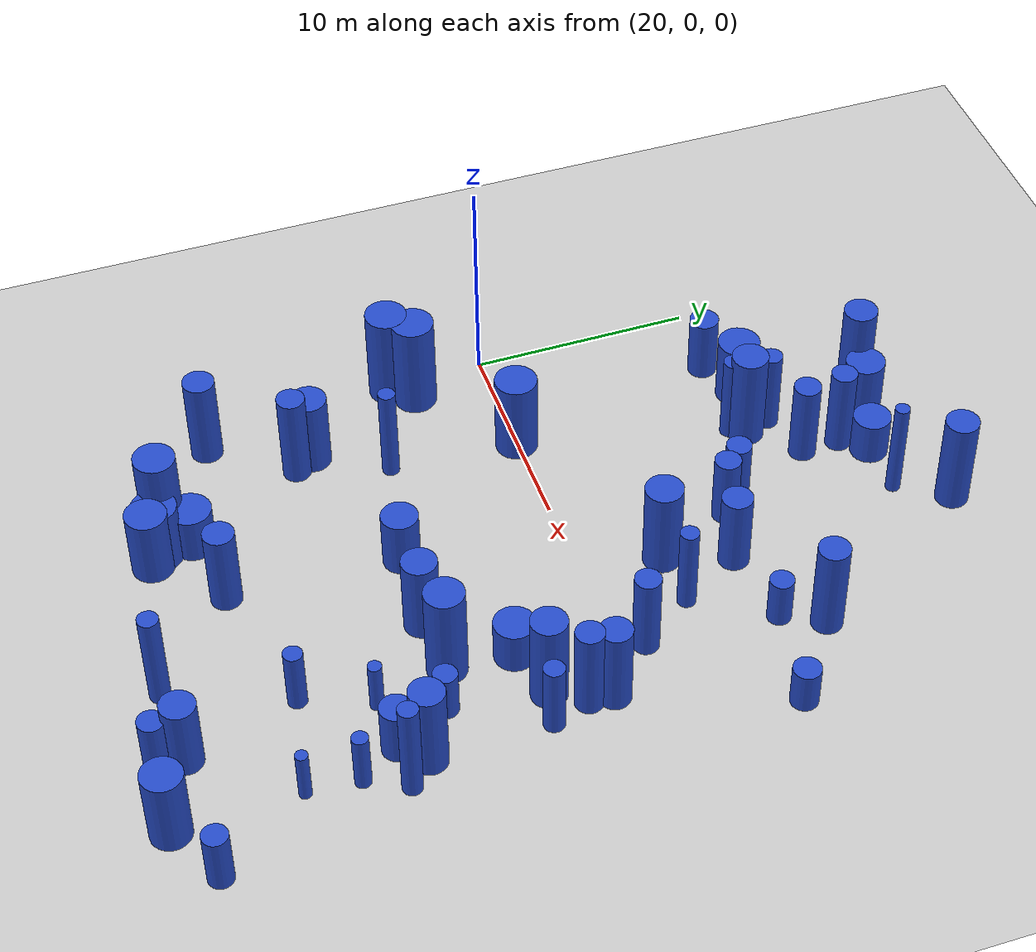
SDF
<sdf version="1.7">
 <world name="default">
  <model name="ground_plane">
   <static>1</static>
   <link name="link">
    <collision name="collision">
     <geometry><plane><normal>0 0 1</normal><size>100 100</size></plane></geometry>
     <surface>
      <contact><collide_bitmask>65535</collide_bitmask></contact>
      <friction><ode><mu>100</mu><mu2>50</mu2></ode></friction>
     </surface>
    </collision>
    <visual name="visual">
     <cast_shadows>0</cast_shadows>
     <geometry><plane><normal>0 0 1</normal><size>100 100</size></plane></geometry>
     <material>
      <script><uri>file://media/materials/scripts/gazebo.material</uri><name>Gazebo/Grey</name></script>
     </material>
    </visual>
   </link>
  </model>
  <model name="4">
   <static>0</static>
   <link name="link">
    <inertial>
     <mass>2</mass>
     <inertia><ixx>2.85473</ixx><ixy>0</ixy><ixz>0</ixz><iyy>2.85473</iyy><iyz>0</iyz><izz>0.620901</izz></inertia>
    </inertial>
    <collision name="collision">
     <geometry><cylinder><length>3.90714</length><radius>0.787973</radius></cylinder></geometry>
     <surface><contact><collide_without_contact>1</collide_without_contact></contact></surface>
    </collision>
    <visual name="visual">
     <geometry><cylinder><length>3.90714</length><radius>0.787973</radius></cylinder></geometry>
     <material>
      <script><uri>file://media/materials/scripts/gazebo.material</uri><name>Gazebo/Blue</name></script>
     </material>
    </visual>
    <gravity>0</gravity>
   </link>
   <pose>34.6272 -7.25577 1.95357 0 -0 0</pose>
  </model>
  <model name="35">
   <static>0</static>
   <link name="link">
    <inertial>
     <mass>2</mass>
     <inertia><ixx>1.28734</ixx><ixy>0</ixy><ixz>0</ixz><iyy>1.28734</iyy><iyz>0</iyz><izz>0.926556</izz></inertia>
    </inertial>
    <collision name="collision">
     <geometry><cylinder><length>2.22359</length><radius>0.962578</radius></cylinder></geometry>
     <surface><contact><collide_without_contact>1</collide_without_contact></contact></surface>
    </collision>
    <visual name="visual">
     <geometry><cylinder><length>2.22359</length><radius>0.962578</radius></cylinder></geometry>
     <material>
      <script><uri>file://media/materials/scripts/gazebo.material</uri><name>Gazebo/Blue</name></script>
     </material>
    </visual>
    <gravity>0</gravity>
   </link>
   <pose>26.9407 -15.2724 1.11179 0 -0 0</pose>
  </model>
  <model name="54">
   <static>0</static>
   <link name="link">
    <inertial>
     <mass>2</mass>
     <inertia><ixx>1.57607</ixx><ixy>0</ixy><ixz>0</ixz><iyy>1.57607</iyy><iyz>0</iyz><izz>0.179412</izz></inertia>
    </inertial>
    <collision name="collision">
     <geometry><cylinder><length>2.98633</length><radius>0.423571</radius></cylinder></geometry>
     <surface><contact><collide_without_contact>1</collide_without_contact></contact></surface>
    </collision>
    <visual name="visual">
     <geometry><cylinder><length>2.98633</length><radius>0.423571</radius></cylinder></geometry>
     <material>
      <script><uri>file://media/materials/scripts/gazebo.material</uri><name>Gazebo/Blue</name></script>
     </material>
    </visual>
    <gravity>0</gravity>
   </link>
   <pose>36.9765 -13.3255 1.49317 0 -0 0</pose>
  </model>
  <model name="72">
   <static>0</static>
   <link name="link">
    <inertial>
     <mass>2</mass>
     <inertia><ixx>3.37373</ixx><ixy>0</ixy><ixz>0</ixz><iyy>3.37373</iyy><iyz>0</iyz><izz>0.599551</izz></inertia>
    </inertial>
    <collision name="collision">
     <geometry><cylinder><length>4.29461</length><radius>0.774307</radius></cylinder></geometry>
     <surface><contact><collide_without_contact>1</collide_without_contact></contact></surface>
    </collision>
    <visual name="visual">
     <geometry><cylinder><length>4.29461</length><radius>0.774307</radius></cylinder></geometry>
     <material>
      <script><uri>file://media/materials/scripts/gazebo.material</uri><name>Gazebo/Blue</name></script>
     </material>
    </visual>
    <gravity>0</gravity>
   </link>
   <pose>41.7207 -9.09712 2.14731 0 -0 0</pose>
  </model>
  <model name="78">
   <static>0</static>
   <link name="link">
    <inertial>
     <mass>2</mass>
     <inertia><ixx>2.13726</ixx><ixy>0</ixy><ixz>0</ixz><iyy>2.13726</iyy><iyz>0</iyz><izz>0.219295</izz></inertia>
    </inertial>
    <collision name="collision">
     <geometry><cylinder><length>3.48793</length><radius>0.46829</radius></cylinder></geometry>
     <surface><contact><collide_without_contact>1</collide_without_contact></contact></surface>
    </collision>
    <visual name="visual">
     <geometry><cylinder><length>3.48793</length><radius>0.46829</radius></cylinder></geometry>
     <material>
      <script><uri>file://media/materials/scripts/gazebo.material</uri><name>Gazebo/Blue</name></script>
     </material>
    </visual>
    <gravity>0</gravity>
   </link>
   <pose>41.5761 -3.76209 1.74397 0 -0 0</pose>
  </model>
  <model name="85">
   <static>0</static>
   <link name="link">
    <inertial>
     <mass>2</mass>
     <inertia>
      <ixx>1.04976</ixx>
      <ixy>0</ixy>
      <ixz>0</ixz>
      <iyy>1.04976</iyy>
      <iyz>0</iyz>
      <izz>0.0926647</izz>
     </inertia>
    </inertial>
    <collision name="collision">
     <geometry><cylinder><length>2.45369</length><radius>0.304409</radius></cylinder></geometry>
     <surface><contact><collide_without_contact>1</collide_without_contact></contact></surface>
    </collision>
    <visual name="visual">
     <geometry><cylinder><length>2.45369</length><radius>0.304409</radius></cylinder></geometry>
     <material>
      <script><uri>file://media/materials/scripts/gazebo.material</uri><name>Gazebo/Blue</name></script>
     </material>
    </visual>
    <gravity>0</gravity>
   </link>
   <pose>38.2487 -10.2937 1.22685 0 -0 0</pose>
  </model>
  <model name="97">
   <static>0</static>
   <link name="link">
    <inertial>
     <mass>2</mass>
     <inertia><ixx>1.02493</ixx><ixy>0</ixy><ixz>0</ixz><iyy>1.02493</iyy><iyz>0</iyz><izz>0.288554</izz></inertia>
    </inertial>
    <collision name="collision">
     <geometry><cylinder><length>2.29868</length><radius>0.537172</radius></cylinder></geometry>
     <surface><contact><collide_without_contact>1</collide_without_contact></contact></surface>
    </collision>
    <visual name="visual">
     <geometry><cylinder><length>2.29868</length><radius>0.537172</radius></cylinder></geometry>
     <material>
      <script><uri>file://media/materials/scripts/gazebo.material</uri><name>Gazebo/Blue</name></script>
     </material>
    </visual>
    <gravity>0</gravity>
   </link>
   <pose>39.1408 7.15868 1.14934 0 -0 0</pose>
  </model>
  <model name="109">
   <static>0</static>
   <link name="link">
    <inertial>
     <mass>2</mass>
     <inertia><ixx>1.3731</ixx><ixy>0</ixy><ixz>0</ixz><iyy>1.3731</iyy><iyz>0</iyz><izz>0.503151</izz></inertia>
    </inertial>
    <collision name="collision">
     <geometry><cylinder><length>2.59406</length><radius>0.709332</radius></cylinder></geometry>
     <surface><contact><collide_without_contact>1</collide_without_contact></contact></surface>
    </collision>
    <visual name="visual">
     <geometry><cylinder><length>2.59406</length><radius>0.709332</radius></cylinder></geometry>
     <material>
      <script><uri>file://media/materials/scripts/gazebo.material</uri><name>Gazebo/Blue</name></script>
     </material>
    </visual>
    <gravity>0</gravity>
   </link>
   <pose>40.7145 -10.1241 1.29703 0 -0 0</pose>
  </model>
  <model name="119">
   <static>0</static>
   <link name="link">
    <inertial>
     <mass>2</mass>
     <inertia><ixx>1.0452</ixx><ixy>0</ixy><ixz>0</ixz><iyy>1.0452</iyy><iyz>0</iyz><izz>0.0754433</izz></inertia>
    </inertial>
    <collision name="collision">
     <geometry><cylinder><length>2.45863</length><radius>0.274669</radius></cylinder></geometry>
     <surface><contact><collide_without_contact>1</collide_without_contact></contact></surface>
    </collision>
    <visual name="visual">
     <geometry><cylinder><length>2.45863</length><radius>0.274669</radius></cylinder></geometry>
     <material>
      <script><uri>file://media/materials/scripts/gazebo.material</uri><name>Gazebo/Blue</name></script>
     </material>
    </visual>
    <gravity>0</gravity>
   </link>
   <pose>41.715 -14.2795 1.22931 0 -0 0</pose>
  </model>
  <model name="124">
   <static>0</static>
   <link name="link">
    <inertial>
     <mass>2</mass>
     <inertia><ixx>3.6875</ixx><ixy>0</ixy><ixz>0</ixz><iyy>3.6875</iyy><iyz>0</iyz><izz>0.151865</izz></inertia>
    </inertial>
    <collision name="collision">
     <geometry><cylinder><length>4.65504</length><radius>0.389699</radius></cylinder></geometry>
     <surface><contact><collide_without_contact>1</collide_without_contact></contact></surface>
    </collision>
    <visual name="visual">
     <geometry><cylinder><length>4.65504</length><radius>0.389699</radius></cylinder></geometry>
     <material>
      <script><uri>file://media/materials/scripts/gazebo.material</uri><name>Gazebo/Blue</name></script>
     </material>
    </visual>
    <gravity>0</gravity>
   </link>
   <pose>25.3115 -5.85747 2.32752 0 -0 0</pose>
  </model>
  <model name="132">
   <static>0</static>
   <link name="link">
    <inertial>
     <mass>2</mass>
     <inertia><ixx>3.47744</ixx><ixy>0</ixy><ixz>0</ixz><iyy>3.47744</iyy><iyz>0</iyz><izz>0.716025</izz></inertia>
    </inertial>
    <collision name="collision">
     <geometry><cylinder><length>4.32626</length><radius>0.846183</radius></cylinder></geometry>
     <surface><contact><collide_without_contact>1</collide_without_contact></contact></surface>
    </collision>
    <visual name="visual">
     <geometry><cylinder><length>4.32626</length><radius>0.846183</radius></cylinder></geometry>
     <material>
      <script><uri>file://media/materials/scripts/gazebo.material</uri><name>Gazebo/Blue</name></script>
     </material>
    </visual>
    <gravity>0</gravity>
   </link>
   <pose>34.3941 3.65061 2.16313 0 -0 0</pose>
  </model>
  <model name="134">
   <static>0</static>
   <link name="link">
    <inertial>
     <mass>2</mass>
     <inertia><ixx>3.83594</ixx><ixy>0</ixy><ixz>0</ixz><iyy>3.83594</iyy><iyz>0</iyz><izz>0.559969</izz></inertia>
    </inertial>
    <collision name="collision">
     <geometry><cylinder><length>4.61906</length><radius>0.748311</radius></cylinder></geometry>
     <surface><contact><collide_without_contact>1</collide_without_contact></contact></surface>
    </collision>
    <visual name="visual">
     <geometry><cylinder><length>4.61906</length><radius>0.748311</radius></cylinder></geometry>
     <material>
      <script><uri>file://media/materials/scripts/gazebo.material</uri><name>Gazebo/Blue</name></script>
     </material>
    </visual>
    <gravity>0</gravity>
   </link>
   <pose>35.0783 17.1234 2.30953 0 -0 0</pose>
  </model>
  <model name="137">
   <static>0</static>
   <link name="link">
    <inertial>
     <mass>2</mass>
     <inertia><ixx>3.57417</ixx><ixy>0</ixy><ixz>0</ixz><iyy>3.57417</iyy><iyz>0</iyz><izz>0.404861</izz></inertia>
    </inertial>
    <collision name="collision">
     <geometry><cylinder><length>4.49783</length><radius>0.636287</radius></cylinder></geometry>
     <surface><contact><collide_without_contact>1</collide_without_contact></contact></surface>
    </collision>
    <visual name="visual">
     <geometry><cylinder><length>4.49783</length><radius>0.636287</radius></cylinder></geometry>
     <material>
      <script><uri>file://media/materials/scripts/gazebo.material</uri><name>Gazebo/Blue</name></script>
     </material>
    </visual>
    <gravity>0</gravity>
   </link>
   <pose>24.0829 -9.86169 2.24891 0 -0 0</pose>
  </model>
  <model name="140">
   <static>0</static>
   <link name="link">
    <inertial>
     <mass>2</mass>
     <inertia><ixx>1.40632</ixx><ixy>0</ixy><ixz>0</ixz><iyy>1.40632</iyy><iyz>0</iyz><izz>0.308108</izz></inertia>
    </inertial>
    <collision name="collision">
     <geometry><cylinder><length>2.7411</length><radius>0.555075</radius></cylinder></geometry>
     <surface><contact><collide_without_contact>1</collide_without_contact></contact></surface>
    </collision>
    <visual name="visual">
     <geometry><cylinder><length>2.7411</length><radius>0.555075</radius></cylinder></geometry>
     <material>
      <script><uri>file://media/materials/scripts/gazebo.material</uri><name>Gazebo/Blue</name></script>
     </material>
    </visual>
    <gravity>0</gravity>
   </link>
   <pose>44.5837 -18.4289 1.37055 0 -0 0</pose>
  </model>
  <model name="146">
   <static>0</static>
   <link name="link">
    <inertial>
     <mass>2</mass>
     <inertia><ixx>4.0179</ixx><ixy>0</ixy><ixz>0</ixz><iyy>4.0179</iyy><iyz>0</iyz><izz>0.681055</izz></inertia>
    </inertial>
    <collision name="collision">
     <geometry><cylinder><length>4.69726</length><radius>0.82526</radius></cylinder></geometry>
     <surface><contact><collide_without_contact>1</collide_without_contact></contact></surface>
    </collision>
    <visual name="visual">
     <geometry><cylinder><length>4.69726</length><radius>0.82526</radius></cylinder></geometry>
     <material>
      <script><uri>file://media/materials/scripts/gazebo.material</uri><name>Gazebo/Blue</name></script>
     </material>
    </visual>
    <gravity>0</gravity>
   </link>
   <pose>28.3068 10.0212 2.34863 0 -0 0</pose>
  </model>
  <model name="148">
   <static>0</static>
   <link name="link">
    <inertial>
     <mass>2</mass>
     <inertia><ixx>4.08409</ixx><ixy>0</ixy><ixz>0</ixz><iyy>4.08409</iyy><iyz>0</iyz><izz>0.951518</izz></inertia>
    </inertial>
    <collision name="collision">
     <geometry><cylinder><length>4.65295</length><radius>0.975458</radius></cylinder></geometry>
     <surface><contact><collide_without_contact>1</collide_without_contact></contact></surface>
    </collision>
    <visual name="visual">
     <geometry><cylinder><length>4.65295</length><radius>0.975458</radius></cylinder></geometry>
     <material>
      <script><uri>file://media/materials/scripts/gazebo.material</uri><name>Gazebo/Blue</name></script>
     </material>
    </visual>
    <gravity>0</gravity>
   </link>
   <pose>21.2235 -3.46112 2.32648 0 -0 0</pose>
  </model>
  <model name="155">
   <static>0</static>
   <link name="link">
    <inertial>
     <mass>2</mass>
     <inertia><ixx>2.94944</ixx><ixy>0</ixy><ixz>0</ixz><iyy>2.94944</iyy><iyz>0</iyz><izz>0.486165</izz></inertia>
    </inertial>
    <collision name="collision">
     <geometry><cylinder><length>4.02966</length><radius>0.697255</radius></cylinder></geometry>
     <surface><contact><collide_without_contact>1</collide_without_contact></contact></surface>
    </collision>
    <visual name="visual">
     <geometry><cylinder><length>4.02966</length><radius>0.697255</radius></cylinder></geometry>
     <material>
      <script><uri>file://media/materials/scripts/gazebo.material</uri><name>Gazebo/Blue</name></script>
     </material>
    </visual>
    <gravity>0</gravity>
   </link>
   <pose>30.4785 -14.7026 2.01483 0 -0 0</pose>
  </model>
  <model name="158">
   <static>0</static>
   <link name="link">
    <inertial>
     <mass>2</mass>
     <inertia><ixx>4.07295</ixx><ixy>0</ixy><ixz>0</ixz><iyy>4.07295</iyy><iyz>0</iyz><izz>0.902413</izz></inertia>
    </inertial>
    <collision name="collision">
     <geometry><cylinder><length>4.66159</length><radius>0.949954</radius></cylinder></geometry>
     <surface><contact><collide_without_contact>1</collide_without_contact></contact></surface>
    </collision>
    <visual name="visual">
     <geometry><cylinder><length>4.66159</length><radius>0.949954</radius></cylinder></geometry>
     <material>
      <script><uri>file://media/materials/scripts/gazebo.material</uri><name>Gazebo/Blue</name></script>
     </material>
    </visual>
    <gravity>0</gravity>
   </link>
   <pose>20.3183 -4.42418 2.3308 0 -0 0</pose>
  </model>
  <model name="171">
   <static>0</static>
   <link name="link">
    <inertial>
     <mass>2</mass>
     <inertia><ixx>2.06842</ixx><ixy>0</ixy><ixz>0</ixz><iyy>2.06842</iyy><iyz>0</iyz><izz>0.996957</izz></inertia>
    </inertial>
    <collision name="collision">
     <geometry><cylinder><length>3.06915</length><radius>0.998477</radius></cylinder></geometry>
     <surface><contact><collide_without_contact>1</collide_without_contact></contact></surface>
    </collision>
    <visual name="visual">
     <geometry><cylinder><length>3.06915</length><radius>0.998477</radius></cylinder></geometry>
     <material>
      <script><uri>file://media/materials/scripts/gazebo.material</uri><name>Gazebo/Blue</name></script>
     </material>
    </visual>
    <gravity>0</gravity>
   </link>
   <pose>27.1194 -16.79 1.53457 0 -0 0</pose>
  </model>
  <model name="182">
   <static>0</static>
   <link name="link">
    <inertial>
     <mass>2</mass>
     <inertia><ixx>3.01124</ixx><ixy>0</ixy><ixz>0</ixz><iyy>3.01124</iyy><iyz>0</iyz><izz>0.1755</izz></inertia>
    </inertial>
    <collision name="collision">
     <geometry><cylinder><length>4.18819</length><radius>0.418927</radius></cylinder></geometry>
     <surface><contact><collide_without_contact>1</collide_without_contact></contact></surface>
    </collision>
    <visual name="visual">
     <geometry><cylinder><length>4.18819</length><radius>0.418927</radius></cylinder></geometry>
     <material>
      <script><uri>file://media/materials/scripts/gazebo.material</uri><name>Gazebo/Blue</name></script>
     </material>
    </visual>
    <gravity>0</gravity>
   </link>
   <pose>37.0226 3.77547 2.0941 0 -0 0</pose>
  </model>
  <model name="188">
   <static>0</static>
   <link name="link">
    <inertial>
     <mass>2</mass>
     <inertia><ixx>3.7068</ixx><ixy>0</ixy><ixz>0</ixz><iyy>3.7068</iyy><iyz>0</iyz><izz>0.490801</izz></inertia>
    </inertial>
    <collision name="collision">
     <geometry><cylinder><length>4.55723</length><radius>0.700572</radius></cylinder></geometry>
     <surface><contact><collide_without_contact>1</collide_without_contact></contact></surface>
    </collision>
    <visual name="visual">
     <geometry><cylinder><length>4.55723</length><radius>0.700572</radius></cylinder></geometry>
     <material>
      <script><uri>file://media/materials/scripts/gazebo.material</uri><name>Gazebo/Blue</name></script>
     </material>
    </visual>
    <gravity>0</gravity>
   </link>
   <pose>40.1164 8.93298 2.27862 0 -0 0</pose>
  </model>
  <model name="193">
   <static>0</static>
   <link name="link">
    <inertial>
     <mass>2</mass>
     <inertia>
      <ixx>0.866241</ixx>
      <ixy>0</ixy>
      <ixz>0</ixz>
      <iyy>0.866241</iyy>
      <iyz>0</iyz>
      <izz>0.378767</izz>
     </inertia>
    </inertial>
    <collision name="collision">
     <geometry><cylinder><length>2.01523</length><radius>0.615441</radius></cylinder></geometry>
     <surface><contact><collide_without_contact>1</collide_without_contact></contact></surface>
    </collision>
    <visual name="visual">
     <geometry><cylinder><length>2.01523</length><radius>0.615441</radius></cylinder></geometry>
     <material>
      <script><uri>file://media/materials/scripts/gazebo.material</uri><name>Gazebo/Blue</name></script>
     </material>
    </visual>
    <gravity>0</gravity>
   </link>
   <pose>43.7436 6.3597 1.00761 0 -0 0</pose>
  </model>
  <model name="206">
   <static>0</static>
   <link name="link">
    <inertial>
     <mass>2</mass>
     <inertia>
      <ixx>0.981413</ixx>
      <ixy>0</ixy>
      <ixz>0</ixz>
      <iyy>0.981413</iyy>
      <iyz>0</iyz>
      <izz>0.28462</izz>
     </inertia>
    </inertial>
    <collision name="collision">
     <geometry><cylinder><length>2.2438</length><radius>0.533498</radius></cylinder></geometry>
     <surface><contact><collide_without_contact>1</collide_without_contact></contact></surface>
    </collision>
    <visual name="visual">
     <geometry><cylinder><length>2.2438</length><radius>0.533498</radius></cylinder></geometry>
     <material>
      <script><uri>file://media/materials/scripts/gazebo.material</uri><name>Gazebo/Blue</name></script>
     </material>
    </visual>
    <gravity>0</gravity>
   </link>
   <pose>39.389 -7.67395 1.1219 0 -0 0</pose>
  </model>
  <model name="209">
   <static>0</static>
   <link name="link">
    <inertial>
     <mass>2</mass>
     <inertia><ixx>3.14662</ixx><ixy>0</ixy><ixz>0</ixz><iyy>3.14662</iyy><iyz>0</iyz><izz>0.116666</izz></inertia>
    </inertial>
    <collision name="collision">
     <geometry><cylinder><length>4.30462</length><radius>0.341565</radius></cylinder></geometry>
     <surface><contact><collide_without_contact>1</collide_without_contact></contact></surface>
    </collision>
    <visual name="visual">
     <geometry><cylinder><length>4.30462</length><radius>0.341565</radius></cylinder></geometry>
     <material>
      <script><uri>file://media/materials/scripts/gazebo.material</uri><name>Gazebo/Blue</name></script>
     </material>
    </visual>
    <gravity>0</gravity>
   </link>
   <pose>26.3442 -16.5562 2.15231 0 -0 0</pose>
  </model>
  <model name="211">
   <static>0</static>
   <link name="link">
    <inertial>
     <mass>2</mass>
     <inertia><ixx>1.59118</ixx><ixy>0</ixy><ixz>0</ixz><iyy>1.59118</iyy><iyz>0</iyz><izz>0.330992</izz></inertia>
    </inertial>
    <collision name="collision">
     <geometry><cylinder><length>2.92474</length><radius>0.575319</radius></cylinder></geometry>
     <surface><contact><collide_without_contact>1</collide_without_contact></contact></surface>
    </collision>
    <visual name="visual">
     <geometry><cylinder><length>2.92474</length><radius>0.575319</radius></cylinder></geometry>
     <material>
      <script><uri>file://media/materials/scripts/gazebo.material</uri><name>Gazebo/Blue</name></script>
     </material>
    </visual>
    <gravity>0</gravity>
   </link>
   <pose>38.4808 -19.5109 1.46237 0 -0 0</pose>
  </model>
  <model name="215">
   <static>0</static>
   <link name="link">
    <inertial>
     <mass>2</mass>
     <inertia><ixx>3.86896</ixx><ixy>0</ixy><ixz>0</ixz><iyy>3.86896</iyy><iyz>0</iyz><izz>0.110319</izz></inertia>
    </inertial>
    <collision name="collision">
     <geometry><cylinder><length>4.7836</length><radius>0.332143</radius></cylinder></geometry>
     <surface><contact><collide_without_contact>1</collide_without_contact></contact></surface>
    </collision>
    <visual name="visual">
     <geometry><cylinder><length>4.7836</length><radius>0.332143</radius></cylinder></geometry>
     <material>
      <script><uri>file://media/materials/scripts/gazebo.material</uri><name>Gazebo/Blue</name></script>
     </material>
    </visual>
    <gravity>0</gravity>
   </link>
   <pose>33.6572 14.9197 2.3918 0 -0 0</pose>
  </model>
  <model name="224">
   <static>0</static>
   <link name="link">
    <inertial>
     <mass>2</mass>
     <inertia><ixx>3.74563</ixx><ixy>0</ixy><ixz>0</ixz><iyy>3.74563</iyy><iyz>0</iyz><izz>0.642376</izz></inertia>
    </inertial>
    <collision name="collision">
     <geometry><cylinder><length>4.53284</length><radius>0.801483</radius></cylinder></geometry>
     <surface><contact><collide_without_contact>1</collide_without_contact></contact></surface>
    </collision>
    <visual name="visual">
     <geometry><cylinder><length>4.53284</length><radius>0.801483</radius></cylinder></geometry>
     <material>
      <script><uri>file://media/materials/scripts/gazebo.material</uri><name>Gazebo/Blue</name></script>
     </material>
    </visual>
    <gravity>0</gravity>
   </link>
   <pose>40.0036 -3.43772 2.26642 0 -0 0</pose>
  </model>
  <model name="227">
   <static>0</static>
   <link name="link">
    <inertial>
     <mass>2</mass>
     <inertia><ixx>3.09174</ixx><ixy>0</ixy><ixz>0</ixz><iyy>3.09174</iyy><iyz>0</iyz><izz>0.922081</izz></inertia>
    </inertial>
    <collision name="collision">
     <geometry><cylinder><length>3.97293</length><radius>0.960251</radius></cylinder></geometry>
     <surface><contact><collide_without_contact>1</collide_without_contact></contact></surface>
    </collision>
    <visual name="visual">
     <geometry><cylinder><length>3.97293</length><radius>0.960251</radius></cylinder></geometry>
     <material>
      <script><uri>file://media/materials/scripts/gazebo.material</uri><name>Gazebo/Blue</name></script>
     </material>
    </visual>
    <gravity>0</gravity>
   </link>
   <pose>25.6223 -0.027422 1.98646 0 -0 0</pose>
  </model>
  <model name="249">
   <static>0</static>
   <link name="link">
    <inertial>
     <mass>2</mass>
     <inertia><ixx>2.81614</ixx><ixy>0</ixy><ixz>0</ixz><iyy>2.81614</iyy><iyz>0</iyz><izz>0.242939</izz></inertia>
    </inertial>
    <collision name="collision">
     <geometry><cylinder><length>4.02094</length><radius>0.492889</radius></cylinder></geometry>
     <surface><contact><collide_without_contact>1</collide_without_contact></contact></surface>
    </collision>
    <visual name="visual">
     <geometry><cylinder><length>4.02094</length><radius>0.492889</radius></cylinder></geometry>
     <material>
      <script><uri>file://media/materials/scripts/gazebo.material</uri><name>Gazebo/Blue</name></script>
     </material>
    </visual>
    <gravity>0</gravity>
   </link>
   <pose>27.9263 11.2477 2.01047 0 -0 0</pose>
  </model>
  <model name="252">
   <static>0</static>
   <link name="link">
    <inertial>
     <mass>2</mass>
     <inertia><ixx>2.94454</ixx><ixy>0</ixy><ixz>0</ixz><iyy>2.94454</iyy><iyz>0</iyz><izz>0.339974</izz></inertia>
    </inertial>
    <collision name="collision">
     <geometry><cylinder><length>4.08011</length><radius>0.583073</radius></cylinder></geometry>
     <surface><contact><collide_without_contact>1</collide_without_contact></contact></surface>
    </collision>
    <visual name="visual">
     <geometry><cylinder><length>4.08011</length><radius>0.583073</radius></cylinder></geometry>
     <material>
      <script><uri>file://media/materials/scripts/gazebo.material</uri><name>Gazebo/Blue</name></script>
     </material>
    </visual>
    <gravity>0</gravity>
   </link>
   <pose>38.7778 1.27238 2.04006 0 -0 0</pose>
  </model>
  <model name="264">
   <static>0</static>
   <link name="link">
    <inertial>
     <mass>2</mass>
     <inertia><ixx>3.3894</ixx><ixy>0</ixy><ixz>0</ixz><iyy>3.3894</iyy><iyz>0</iyz><izz>0.514223</izz></inertia>
    </inertial>
    <collision name="collision">
     <geometry><cylinder><length>4.33517</length><radius>0.717093</radius></cylinder></geometry>
     <surface><contact><collide_without_contact>1</collide_without_contact></contact></surface>
    </collision>
    <visual name="visual">
     <geometry><cylinder><length>4.33517</length><radius>0.717093</radius></cylinder></geometry>
     <material>
      <script><uri>file://media/materials/scripts/gazebo.material</uri><name>Gazebo/Blue</name></script>
     </material>
    </visual>
    <gravity>0</gravity>
   </link>
   <pose>21.534 -13.3726 2.16759 0 -0 0</pose>
  </model>
  <model name="279">
   <static>0</static>
   <link name="link">
    <inertial>
     <mass>2</mass>
     <inertia><ixx>1.10862</ixx><ixy>0</ixy><ixz>0</ixz><iyy>1.10862</iyy><iyz>0</iyz><izz>0.836783</izz></inertia>
    </inertial>
    <collision name="collision">
     <geometry><cylinder><length>2.03504</length><radius>0.914758</radius></cylinder></geometry>
     <surface><contact><collide_without_contact>1</collide_without_contact></contact></surface>
    </collision>
    <visual name="visual">
     <geometry><cylinder><length>2.03504</length><radius>0.914758</radius></cylinder></geometry>
     <material>
      <script><uri>file://media/materials/scripts/gazebo.material</uri><name>Gazebo/Blue</name></script>
     </material>
    </visual>
    <gravity>0</gravity>
   </link>
   <pose>37.5279 -4.09697 1.01752 0 -0 0</pose>
  </model>
  <model name="287">
   <static>0</static>
   <link name="link">
    <inertial>
     <mass>2</mass>
     <inertia><ixx>2.34498</ixx><ixy>0</ixy><ixz>0</ixz><iyy>2.34498</iyy><iyz>0</iyz><izz>0.593776</izz></inertia>
    </inertial>
    <collision name="collision">
     <geometry><cylinder><length>3.50551</length><radius>0.770568</radius></cylinder></geometry>
     <surface><contact><collide_without_contact>1</collide_without_contact></contact></surface>
    </collision>
    <visual name="visual">
     <geometry><cylinder><length>3.50551</length><radius>0.770568</radius></cylinder></geometry>
     <material>
      <script><uri>file://media/materials/scripts/gazebo.material</uri><name>Gazebo/Blue</name></script>
     </material>
    </visual>
    <gravity>0</gravity>
   </link>
   <pose>38.5059 -18.3802 1.75275 0 -0 0</pose>
  </model>
  <model name="299">
   <static>0</static>
   <link name="link">
    <inertial>
     <mass>2</mass>
     <inertia><ixx>2.04138</ixx><ixy>0</ixy><ixz>0</ixz><iyy>2.04138</iyy><iyz>0</iyz><izz>0.352481</izz></inertia>
    </inertial>
    <collision name="collision">
     <geometry><cylinder><length>3.34527</length><radius>0.593701</radius></cylinder></geometry>
     <surface><contact><collide_without_contact>1</collide_without_contact></contact></surface>
    </collision>
    <visual name="visual">
     <geometry><cylinder><length>3.34527</length><radius>0.593701</radius></cylinder></geometry>
     <material>
      <script><uri>file://media/materials/scripts/gazebo.material</uri><name>Gazebo/Blue</name></script>
     </material>
    </visual>
    <gravity>0</gravity>
   </link>
   <pose>32.7883 7.23221 1.67263 0 -0 0</pose>
  </model>
  <model name="311">
   <static>0</static>
   <link name="link">
    <inertial>
     <mass>2</mass>
     <inertia><ixx>3.16803</ixx><ixy>0</ixy><ixz>0</ixz><iyy>3.16803</iyy><iyz>0</iyz><izz>0.506831</izz></inertia>
    </inertial>
    <collision name="collision">
     <geometry><cylinder><length>4.18183</length><radius>0.711921</radius></cylinder></geometry>
     <surface><contact><collide_without_contact>1</collide_without_contact></contact></surface>
    </collision>
    <visual name="visual">
     <geometry><cylinder><length>4.18183</length><radius>0.711921</radius></cylinder></geometry>
     <material>
      <script><uri>file://media/materials/scripts/gazebo.material</uri><name>Gazebo/Blue</name></script>
     </material>
    </visual>
    <gravity>0</gravity>
   </link>
   <pose>41.0345 -0.939268 2.09091 0 -0 0</pose>
  </model>
  <model name="320">
   <static>0</static>
   <link name="link">
    <inertial>
     <mass>2</mass>
     <inertia><ixx>1.4739</ixx><ixy>0</ixy><ixz>0</ixz><iyy>1.4739</iyy><iyz>0</iyz><izz>0.331839</izz></inertia>
    </inertial>
    <collision name="collision">
     <geometry><cylinder><length>2.8014</length><radius>0.576055</radius></cylinder></geometry>
     <surface><contact><collide_without_contact>1</collide_without_contact></contact></surface>
    </collision>
    <visual name="visual">
     <geometry><cylinder><length>2.8014</length><radius>0.576055</radius></cylinder></geometry>
     <material>
      <script><uri>file://media/materials/scripts/gazebo.material</uri><name>Gazebo/Blue</name></script>
     </material>
    </visual>
    <gravity>0</gravity>
   </link>
   <pose>31.581 8.26388 1.4007 0 -0 0</pose>
  </model>
  <model name="325">
   <static>0</static>
   <link name="link">
    <inertial>
     <mass>2</mass>
     <inertia><ixx>1.62016</ixx><ixy>0</ixy><ixz>0</ixz><iyy>1.62016</iyy><iyz>0</iyz><izz>0.683666</izz></inertia>
    </inertial>
    <collision name="collision">
     <geometry><cylinder><length>2.76947</length><radius>0.826841</radius></cylinder></geometry>
     <surface><contact><collide_without_contact>1</collide_without_contact></contact></surface>
    </collision>
    <visual name="visual">
     <geometry><cylinder><length>2.76947</length><radius>0.826841</radius></cylinder></geometry>
     <material>
      <script><uri>file://media/materials/scripts/gazebo.material</uri><name>Gazebo/Blue</name></script>
     </material>
    </visual>
    <gravity>0</gravity>
   </link>
   <pose>30.7827 -6.99788 1.38473 0 -0 0</pose>
  </model>
  <model name="330">
   <static>0</static>
   <link name="link">
    <inertial>
     <mass>2</mass>
     <inertia><ixx>2.09814</ixx><ixy>0</ixy><ixz>0</ixz><iyy>2.09814</iyy><iyz>0</iyz><izz>0.910541</izz></inertia>
    </inertial>
    <collision name="collision">
     <geometry><cylinder><length>3.13962</length><radius>0.954223</radius></cylinder></geometry>
     <surface><contact><collide_without_contact>1</collide_without_contact></contact></surface>
    </collision>
    <visual name="visual">
     <geometry><cylinder><length>3.13962</length><radius>0.954223</radius></cylinder></geometry>
     <material>
      <script><uri>file://media/materials/scripts/gazebo.material</uri><name>Gazebo/Blue</name></script>
     </material>
    </visual>
    <gravity>0</gravity>
   </link>
   <pose>25.6855 10.6289 1.56981 0 -0 0</pose>
  </model>
  <model name="334">
   <static>0</static>
   <link name="link">
    <inertial>
     <mass>2</mass>
     <inertia><ixx>2.86246</ixx><ixy>0</ixy><ixz>0</ixz><iyy>2.86246</iyy><iyz>0</iyz><izz>0.379122</izz></inertia>
    </inertial>
    <collision name="collision">
     <geometry><cylinder><length>4.00467</length><radius>0.615729</radius></cylinder></geometry>
     <surface><contact><collide_without_contact>1</collide_without_contact></contact></surface>
    </collision>
    <visual name="visual">
     <geometry><cylinder><length>4.00467</length><radius>0.615729</radius></cylinder></geometry>
     <material>
      <script><uri>file://media/materials/scripts/gazebo.material</uri><name>Gazebo/Blue</name></script>
     </material>
    </visual>
    <gravity>0</gravity>
   </link>
   <pose>30.278 11.9832 2.00234 0 -0 0</pose>
  </model>
  <model name="336">
   <static>0</static>
   <link name="link">
    <inertial>
     <mass>2</mass>
     <inertia><ixx>3.14117</ixx><ixy>0</ixy><ixz>0</ixz><iyy>3.14117</iyy><iyz>0</iyz><izz>0.342409</izz></inertia>
    </inertial>
    <collision name="collision">
     <geometry><cylinder><length>4.22135</length><radius>0.585157</radius></cylinder></geometry>
     <surface><contact><collide_without_contact>1</collide_without_contact></contact></surface>
    </collision>
    <visual name="visual">
     <geometry><cylinder><length>4.22135</length><radius>0.585157</radius></cylinder></geometry>
     <material>
      <script><uri>file://media/materials/scripts/gazebo.material</uri><name>Gazebo/Blue</name></script>
     </material>
    </visual>
    <gravity>0</gravity>
   </link>
   <pose>30.2378 13.7477 2.11068 0 -0 0</pose>
  </model>
  <model name="348">
   <static>0</static>
   <link name="link">
    <inertial>
     <mass>2</mass>
     <inertia><ixx>1.09387</ixx><ixy>0</ixy><ixz>0</ixz><iyy>1.09387</iyy><iyz>0</iyz><izz>0.730361</izz></inertia>
    </inertial>
    <collision name="collision">
     <geometry><cylinder><length>2.09097</length><radius>0.854611</radius></cylinder></geometry>
     <surface><contact><collide_without_contact>1</collide_without_contact></contact></surface>
    </collision>
    <visual name="visual">
     <geometry><cylinder><length>2.09097</length><radius>0.854611</radius></cylinder></geometry>
     <material>
      <script><uri>file://media/materials/scripts/gazebo.material</uri><name>Gazebo/Blue</name></script>
     </material>
    </visual>
    <gravity>0</gravity>
   </link>
   <pose>31.1541 14.872 1.04549 0 -0 0</pose>
  </model>
  <model name="380">
   <static>0</static>
   <link name="link">
    <inertial>
     <mass>2</mass>
     <inertia><ixx>3.81783</ixx><ixy>0</ixy><ixz>0</ixz><iyy>3.81783</iyy><iyz>0</iyz><izz>0.211033</izz></inertia>
    </inertial>
    <collision name="collision">
     <geometry><cylinder><length>4.71952</length><radius>0.459383</radius></cylinder></geometry>
     <surface><contact><collide_without_contact>1</collide_without_contact></contact></surface>
    </collision>
    <visual name="visual">
     <geometry><cylinder><length>4.71952</length><radius>0.459383</radius></cylinder></geometry>
     <material>
      <script><uri>file://media/materials/scripts/gazebo.material</uri><name>Gazebo/Blue</name></script>
     </material>
    </visual>
    <gravity>0</gravity>
   </link>
   <pose>34.8261 -18.5871 2.35976 0 -0 0</pose>
  </model>
  <model name="389">
   <static>0</static>
   <link name="link">
    <inertial>
     <mass>2</mass>
     <inertia><ixx>4.04971</ixx><ixy>0</ixy><ixz>0</ixz><iyy>4.04971</iyy><iyz>0</iyz><izz>0.194326</izz></inertia>
    </inertial>
    <collision name="collision">
     <geometry><cylinder><length>4.86983</length><radius>0.440824</radius></cylinder></geometry>
     <surface><contact><collide_without_contact>1</collide_without_contact></contact></surface>
    </collision>
    <visual name="visual">
     <geometry><cylinder><length>4.86983</length><radius>0.440824</radius></cylinder></geometry>
     <material>
      <script><uri>file://media/materials/scripts/gazebo.material</uri><name>Gazebo/Blue</name></script>
     </material>
    </visual>
    <gravity>0</gravity>
   </link>
   <pose>42.7967 -10.1597 2.43492 0 -0 0</pose>
  </model>
  <model name="395">
   <static>0</static>
   <link name="link">
    <inertial>
     <mass>2</mass>
     <inertia><ixx>2.64764</ixx><ixy>0</ixy><ixz>0</ixz><iyy>2.64764</iyy><iyz>0</iyz><izz>0.675936</izz></inertia>
    </inertial>
    <collision name="collision">
     <geometry><cylinder><length>3.72264</length><radius>0.822153</radius></cylinder></geometry>
     <surface><contact><collide_without_contact>1</collide_without_contact></contact></surface>
    </collision>
    <visual name="visual">
     <geometry><cylinder><length>3.72264</length><radius>0.822153</radius></cylinder></geometry>
     <material>
      <script><uri>file://media/materials/scripts/gazebo.material</uri><name>Gazebo/Blue</name></script>
     </material>
    </visual>
    <gravity>0</gravity>
   </link>
   <pose>23.5368 -8.97598 1.86132 0 -0 0</pose>
  </model>
  <model name="398">
   <static>0</static>
   <link name="link">
    <inertial>
     <mass>2</mass>
     <inertia><ixx>4.25835</ixx><ixy>0</ixy><ixz>0</ixz><iyy>4.25835</iyy><iyz>0</iyz><izz>0.855851</izz></inertia>
    </inertial>
    <collision name="collision">
     <geometry><cylinder><length>4.79401</length><radius>0.925122</radius></cylinder></geometry>
     <surface><contact><collide_without_contact>1</collide_without_contact></contact></surface>
    </collision>
    <visual name="visual">
     <geometry><cylinder><length>4.79401</length><radius>0.925122</radius></cylinder></geometry>
     <material>
      <script><uri>file://media/materials/scripts/gazebo.material</uri><name>Gazebo/Blue</name></script>
     </material>
    </visual>
    <gravity>0</gravity>
   </link>
   <pose>26.0248 -16.332 2.39701 0 -0 0</pose>
  </model>
  <model name="399">
   <static>0</static>
   <link name="link">
    <inertial>
     <mass>2</mass>
     <inertia><ixx>3.08676</ixx><ixy>0</ixy><ixz>0</ixz><iyy>3.08676</iyy><iyz>0</iyz><izz>0.203108</izz></inertia>
    </inertial>
    <collision name="collision">
     <geometry><cylinder><length>4.23217</length><radius>0.450676</radius></cylinder></geometry>
     <surface><contact><collide_without_contact>1</collide_without_contact></contact></surface>
    </collision>
    <visual name="visual">
     <geometry><cylinder><length>4.23217</length><radius>0.450676</radius></cylinder></geometry>
     <material>
      <script><uri>file://media/materials/scripts/gazebo.material</uri><name>Gazebo/Blue</name></script>
     </material>
    </visual>
    <gravity>0</gravity>
   </link>
   <pose>27.9382 9.40119 2.11608 0 -0 0</pose>
  </model>
  <model name="426">
   <static>0</static>
   <link name="link">
    <inertial>
     <mass>2</mass>
     <inertia><ixx>2.22942</ixx><ixy>0</ixy><ixz>0</ixz><iyy>2.22942</iyy><iyz>0</iyz><izz>0.861934</izz></inertia>
    </inertial>
    <collision name="collision">
     <geometry><cylinder><length>3.28493</length><radius>0.928404</radius></cylinder></geometry>
     <surface><contact><collide_without_contact>1</collide_without_contact></contact></surface>
    </collision>
    <visual name="visual">
     <geometry><cylinder><length>3.28493</length><radius>0.928404</radius></cylinder></geometry>
     <material>
      <script><uri>file://media/materials/scripts/gazebo.material</uri><name>Gazebo/Blue</name></script>
     </material>
    </visual>
    <gravity>0</gravity>
   </link>
   <pose>27.6779 -17.243 1.64246 0 -0 0</pose>
  </model>
  <model name="429">
   <static>0</static>
   <link name="link">
    <inertial>
     <mass>2</mass>
     <inertia><ixx>2.65307</ixx><ixy>0</ixy><ixz>0</ixz><iyy>2.65307</iyy><iyz>0</iyz><izz>0.477368</izz></inertia>
    </inertial>
    <collision name="collision">
     <geometry><cylinder><length>3.80609</length><radius>0.690918</radius></cylinder></geometry>
     <surface><contact><collide_without_contact>1</collide_without_contact></contact></surface>
    </collision>
    <visual name="visual">
     <geometry><cylinder><length>3.80609</length><radius>0.690918</radius></cylinder></geometry>
     <material>
      <script><uri>file://media/materials/scripts/gazebo.material</uri><name>Gazebo/Blue</name></script>
     </material>
    </visual>
    <gravity>0</gravity>
   </link>
   <pose>35.4342 6.57784 1.90305 0 -0 0</pose>
  </model>
  <model name="433">
   <static>0</static>
   <link name="link">
    <inertial>
     <mass>2</mass>
     <inertia><ixx>1.35008</ixx><ixy>0</ixy><ixz>0</ixz><iyy>1.35008</iyy><iyz>0</iyz><izz>0.128271</izz></inertia>
    </inertial>
    <collision name="collision">
     <geometry><cylinder><length>2.77771</length><radius>0.35815</radius></cylinder></geometry>
     <surface><contact><collide_without_contact>1</collide_without_contact></contact></surface>
    </collision>
    <visual name="visual">
     <geometry><cylinder><length>2.77771</length><radius>0.35815</radius></cylinder></geometry>
     <material>
      <script><uri>file://media/materials/scripts/gazebo.material</uri><name>Gazebo/Blue</name></script>
     </material>
    </visual>
    <gravity>0</gravity>
   </link>
   <pose>41.8791 -11.9352 1.38886 0 -0 0</pose>
  </model>
  <model name="443">
   <static>0</static>
   <link name="link">
    <inertial>
     <mass>2</mass>
     <inertia><ixx>2.69637</ixx><ixy>0</ixy><ixz>0</ixz><iyy>2.69637</iyy><iyz>0</iyz><izz>0.781853</izz></inertia>
    </inertial>
    <collision name="collision">
     <geometry><cylinder><length>3.71923</length><radius>0.884225</radius></cylinder></geometry>
     <surface><contact><collide_without_contact>1</collide_without_contact></contact></surface>
    </collision>
    <visual name="visual">
     <geometry><cylinder><length>3.71923</length><radius>0.884225</radius></cylinder></geometry>
     <material>
      <script><uri>file://media/materials/scripts/gazebo.material</uri><name>Gazebo/Blue</name></script>
     </material>
    </visual>
    <gravity>0</gravity>
   </link>
   <pose>41.8564 -19.764 1.85962 0 -0 0</pose>
  </model>
  <model name="447">
   <static>0</static>
   <link name="link">
    <inertial>
     <mass>2</mass>
     <inertia><ixx>4.09982</ixx><ixy>0</ixy><ixz>0</ixz><iyy>4.09982</iyy><iyz>0</iyz><izz>0.778602</izz></inertia>
    </inertial>
    <collision name="collision">
     <geometry><cylinder><length>4.71838</length><radius>0.882384</radius></cylinder></geometry>
     <surface><contact><collide_without_contact>1</collide_without_contact></contact></surface>
    </collision>
    <visual name="visual">
     <geometry><cylinder><length>4.71838</length><radius>0.882384</radius></cylinder></geometry>
     <material>
      <script><uri>file://media/materials/scripts/gazebo.material</uri><name>Gazebo/Blue</name></script>
     </material>
    </visual>
    <gravity>0</gravity>
   </link>
   <pose>37.3349 -6.99659 2.35919 0 -0 0</pose>
  </model>
  <model name="452">
   <static>0</static>
   <link name="link">
    <inertial>
     <mass>2</mass>
     <inertia><ixx>1.36254</ixx><ixy>0</ixy><ixz>0</ixz><iyy>1.36254</iyy><iyz>0</iyz><izz>0.806202</izz></inertia>
    </inertial>
    <collision name="collision">
     <geometry><cylinder><length>2.3993</length><radius>0.897888</radius></cylinder></geometry>
     <surface><contact><collide_without_contact>1</collide_without_contact></contact></surface>
    </collision>
    <visual name="visual">
     <geometry><cylinder><length>2.3993</length><radius>0.897888</radius></cylinder></geometry>
     <material>
      <script><uri>file://media/materials/scripts/gazebo.material</uri><name>Gazebo/Blue</name></script>
     </material>
    </visual>
    <gravity>0</gravity>
   </link>
   <pose>28.0273 15.9156 1.19965 0 -0 0</pose>
  </model>
  <model name="459">
   <static>0</static>
   <link name="link">
    <inertial>
     <mass>2</mass>
     <inertia><ixx>1.77746</ixx><ixy>0</ixy><ixz>0</ixz><iyy>1.77746</iyy><iyz>0</iyz><izz>0.442987</izz></inertia>
    </inertial>
    <collision name="collision">
     <geometry><cylinder><length>3.05546</length><radius>0.665573</radius></cylinder></geometry>
     <surface><contact><collide_without_contact>1</collide_without_contact></contact></surface>
    </collision>
    <visual name="visual">
     <geometry><cylinder><length>3.05546</length><radius>0.665573</radius></cylinder></geometry>
     <material>
      <script><uri>file://media/materials/scripts/gazebo.material</uri><name>Gazebo/Blue</name></script>
     </material>
    </visual>
    <gravity>0</gravity>
   </link>
   <pose>23.6428 9.73926 1.52773 0 -0 0</pose>
  </model>
  <model name="462">
   <static>0</static>
   <link name="link">
    <inertial>
     <mass>2</mass>
     <inertia><ixx>3.33354</ixx><ixy>0</ixy><ixz>0</ixz><iyy>3.33354</iyy><iyz>0</iyz><izz>0.592874</izz></inertia>
    </inertial>
    <collision name="collision">
     <geometry><cylinder><length>4.26879</length><radius>0.769983</radius></cylinder></geometry>
     <surface><contact><collide_without_contact>1</collide_without_contact></contact></surface>
    </collision>
    <visual name="visual">
     <geometry><cylinder><length>4.26879</length><radius>0.769983</radius></cylinder></geometry>
     <material>
      <script><uri>file://media/materials/scripts/gazebo.material</uri><name>Gazebo/Blue</name></script>
     </material>
    </visual>
    <gravity>0</gravity>
   </link>
   <pose>26.6592 16.1193 2.1344 0 -0 0</pose>
  </model>
  <model name="487">
   <static>0</static>
   <link name="link">
    <inertial>
     <mass>2</mass>
     <inertia><ixx>3.34967</ixx><ixy>0</ixy><ixz>0</ixz><iyy>3.34967</iyy><iyz>0</iyz><izz>0.397948</izz></inertia>
    </inertial>
    <collision name="collision">
     <geometry><cylinder><length>4.34789</length><radius>0.630831</radius></cylinder></geometry>
     <surface><contact><collide_without_contact>1</collide_without_contact></contact></surface>
    </collision>
    <visual name="visual">
     <geometry><cylinder><length>4.34789</length><radius>0.630831</radius></cylinder></geometry>
     <material>
      <script><uri>file://media/materials/scripts/gazebo.material</uri><name>Gazebo/Blue</name></script>
     </material>
    </visual>
    <gravity>0</gravity>
   </link>
   <pose>40.9608 -2.03445 2.17395 0 -0 0</pose>
  </model>
 </world>
</sdf>
